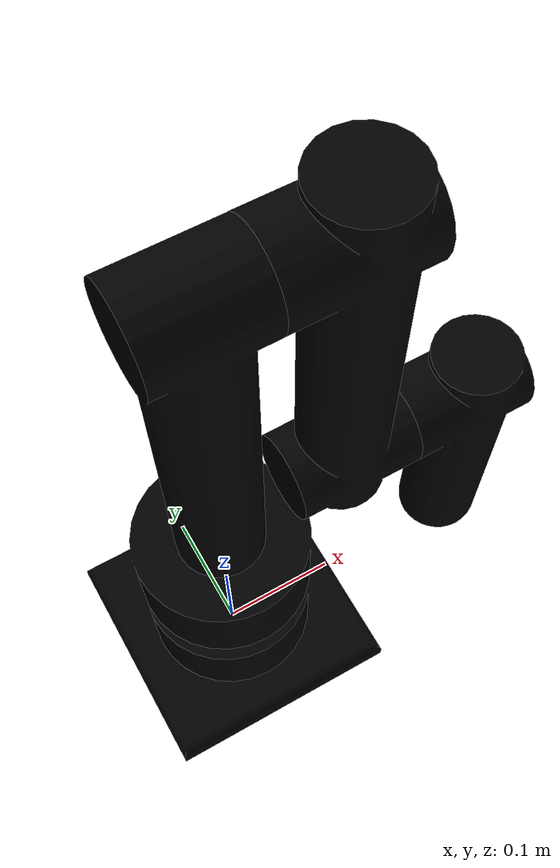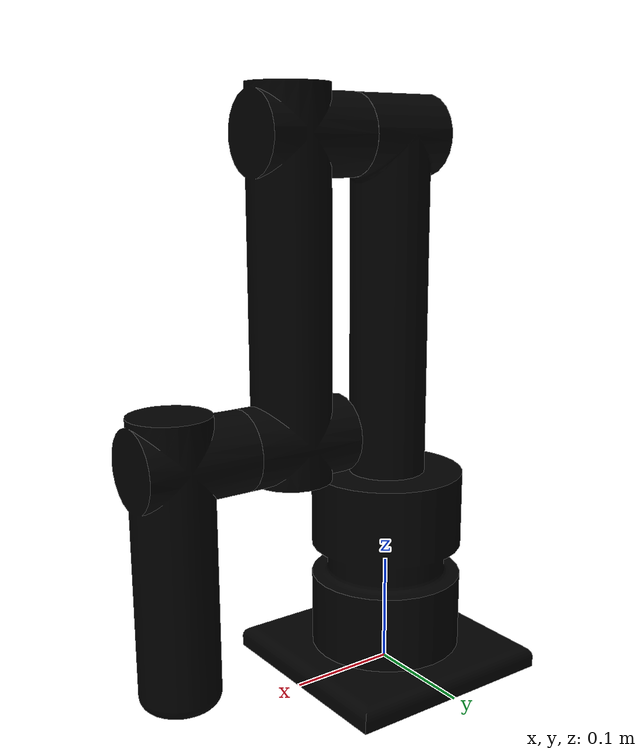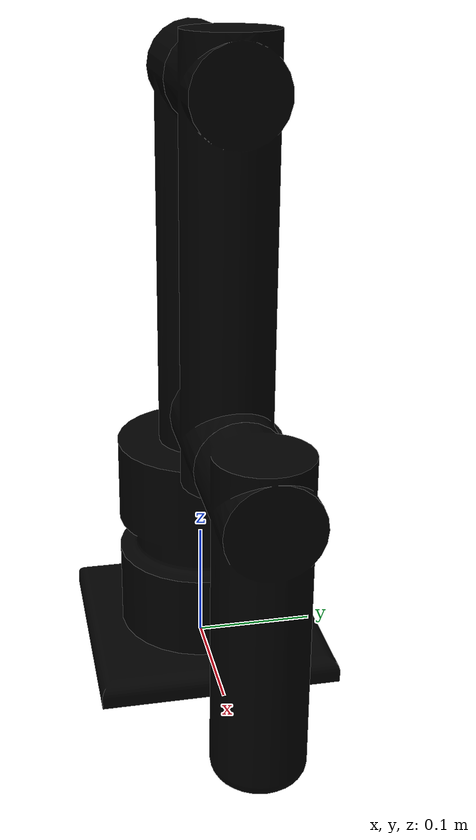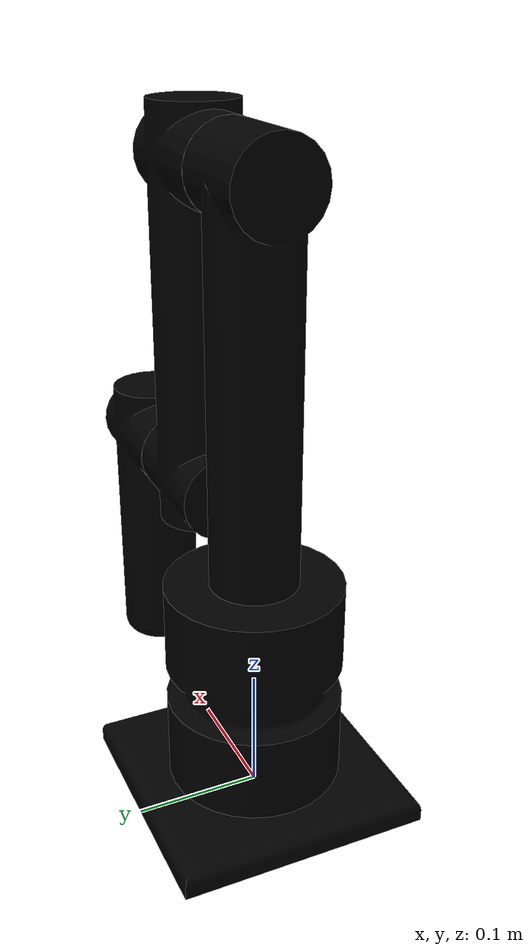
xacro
<?xml version="1.0" encoding="utf-8"?>
<robot
  name="manipulator" xmlns:xacro="http://www.ros.org/wiki/xacro">
  <link
    name="base_link">
    <inertial>
      <origin
        xyz="-8.9967E-18 0.082909 3.663E-20"
        rpy="0 0 0" />
      <mass
        value="3.2518" />
      <inertia
        ixx="0.017546"
        ixy="-1.8589E-18"
        ixz="-8.2104E-19"
        iyy="0.010844"
        iyz="3.1978E-20"
        izz="0.017546" />
    </inertial>
    <visual>
      <origin
        xyz="0 0 0"
        rpy="0 0 0" />
      <geometry>
        <mesh
          filename="package://manipulator/meshes/base_link.STL" />
      </geometry>
      <material
        name="">
        <color
          rgba="0 0 0 1" />
      </material>
    </visual>
    <collision>
      <origin
        xyz="0 0 0"
        rpy="0 0 0" />
      <geometry>
        <mesh
          filename="package://manipulator/meshes/base_link.STL" />
      </geometry>
    </collision>
  </link>
   <link name="world" />
   <joint name="world_to_base_link=" type="fixed">
     <parent link="world"/>
     <child link="base_link"/>
  </joint>
  <link
    name="link1">
    <inertial>
      <origin
        xyz="6.2597E-09 0.17473 -0.00017925"
        rpy="0 0 0" />
      <mass
        value="1.3146" />
      <inertia
        ixx="0.012676"
        ixy="-1.1495E-12"
        ixz="9.8141E-10"
        iyy="0.00089209"
        iyz="2.9519E-05"
        izz="0.012621" />
    </inertial>
    <visual>
      <origin
        xyz="0 0 0"
        rpy="0 0 0" />
      <geometry>
        <mesh
          filename="package://manipulator/meshes/link1.STL" />
      </geometry>
      <material
        name="">
        <color
          rgba="0 0 0 1" />
      </material>
    </visual>
    <collision>
      <origin
        xyz="0 0 0"
        rpy="0 0 0" />
      <geometry>
        <mesh
          filename="package://manipulator/meshes/link1.STL" />
      </geometry>
    </collision>
  </link>
  <joint
    name="joint0"
    type="continuous">
    <origin
      xyz="0 0 0.19"
      rpy="1.5708 0 1.5708" />
    <parent
      link="base_link" />
    <child
      link="link1" />
    <axis
      xyz="0 1 0" />
  </joint>
  <link
    name="link2">
    <inertial>
      <origin
        xyz="0.090667 -0.12397 2.5675E-07"
        rpy="0 0 0" />
      <mass
        value="1.5823" />
      <inertia
        ixx="0.01719"
        ixy="0.00076592"
        ixz="3.3275E-10"
        iyy="0.0014992"
        iyz="2.4054E-09"
        izz="0.017664" />
    </inertial>
    <visual>
      <origin
        xyz="0 0 0"
        rpy="0 0 0" />
      <geometry>
        <mesh
          filename="package://manipulator/meshes/link2.STL" />
      </geometry>
      <material
        name="">
        <color
          rgba="0 0 0 1" />
      </material>
    </visual>
    <collision>
      <origin
        xyz="0 0 0"
        rpy="0 0 0" />
      <geometry>
        <mesh
          filename="package://manipulator/meshes/link2.STL" />
      </geometry>
    </collision>
  </link>
  <joint
    name="joint1"
    type="continuous">
    <origin
      xyz="0 0.3 0.01"
      rpy="0 -1.5708 0" />
    <parent
      link="link1" />
    <child
      link="link2" />
    <axis
      xyz="1 0 0" />
  </joint>
  <link
    name="link3">
    <inertial>
      <origin
        xyz="0.08919 -0.071986 3.5323E-08"
        rpy="0 0 0" />
      <mass
        value="1.1233" />
      <inertia
        ixx="0.0063484"
        ixy="0.00046983"
        ixz="-1.0835E-09"
        iyy="0.0010023"
        iyz="-5.3698E-10"
        izz="0.006642" />
    </inertial>
    <visual>
      <origin
        xyz="0 0 0"
        rpy="0 0 0" />
      <geometry>
        <mesh
          filename="package://manipulator/meshes/link3.STL" />
      </geometry>
      <material
        name="">
        <color
          rgba="0 0 0 1" />
      </material>
    </visual>
    <collision>
      <origin
        xyz="0 0 0"
        rpy="0 0 0" />
      <geometry>
        <mesh
          filename="package://manipulator/meshes/link3.STL" />
      </geometry>
    </collision>
  </link>
  <joint
    name="joint2"
    type="continuous">
    <origin
      xyz="0.115 -0.255 0"
      rpy="0 0 0" />
    <parent
      link="link2" />
    <child
      link="link3" />
    <axis
      xyz="1 0 0" />
  </joint>
   <!-- ros_control plugin -->
    <gazebo>
        <plugin name="gazebo_ros_control" filename="libgazebo_ros_control.so">
            <robotNamespace>/manipulator</robotNamespace>
            <robotSimType>gazebo_ros_control/DefaultRobotHWSim</robotSimType>
        </plugin>
    </gazebo>
    <gazebo reference="base_link">
        <material>Gazebo/Black</material>
    </gazebo>

<transmission name="tran1">
    <type>transmission_interface/SimpleTransmission</type>
    <joint name="joint0">
        <hardwareInterface>hardware_interface/EffortJointInterface</hardwareInterface>
    </joint>
    <actuator name="motor1">
        <hardwareInterface>hardware_interface/EffortJointInterface</hardwareInterface>
        <mechanicalReduction>1</mechanicalReduction>
    </actuator>
</transmission>

<transmission name="tran2">
    <type>transmission_interface/SimpleTransmission</type>
    <joint name="joint1">
        <hardwareInterface>hardware_interface/EffortJointInterface</hardwareInterface>
    </joint>
    <actuator name="motor2">
        <hardwareInterface>hardware_interface/EffortJointInterface</hardwareInterface>
        <mechanicalReduction>1</mechanicalReduction>
    </actuator>
</transmission>

<transmission name="tran3">
    <type>transmission_interface/SimpleTransmission</type>
    <joint name="joint2">
        <hardwareInterface>hardware_interface/EffortJointInterface</hardwareInterface>
    </joint>
    <actuator name="motor3">
        <hardwareInterface>hardware_interface/EffortJointInterface</hardwareInterface>
        <mechanicalReduction>1</mechanicalReduction>
    </actuator>
</transmission>

</robot>
